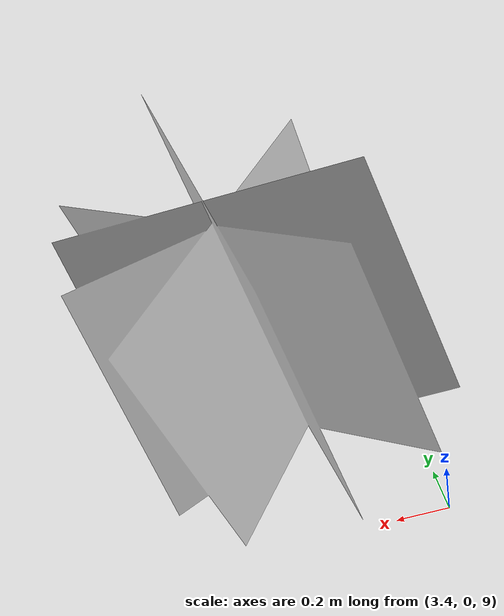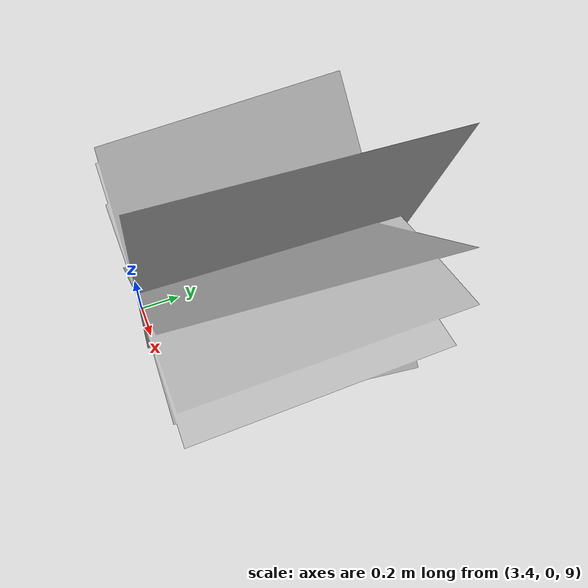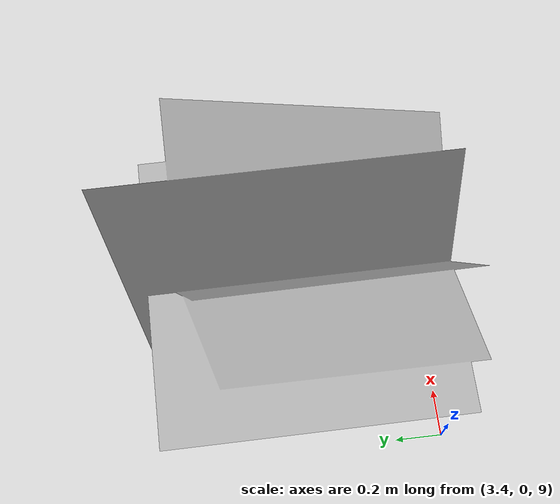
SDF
<?xml version="1.0" ?>
<sdf version="1.9">
  <model name="grass_02">
    <static>true</static>
    <link name="link">
      <collision name="collision">
        <pose>0 0 0.25 0 0 0</pose>
        <geometry>
          <box>
            <size>0.8 0.8 0.5</size>
          </box>
        </geometry>
      </collision>
      <visual name="visual">
        <geometry>
          <mesh>
            <uri>model://grass_02/meshes/Grass-02.obj</uri>
          </mesh>
        </geometry>
      </visual>
    </link>
  </model>
</sdf>
